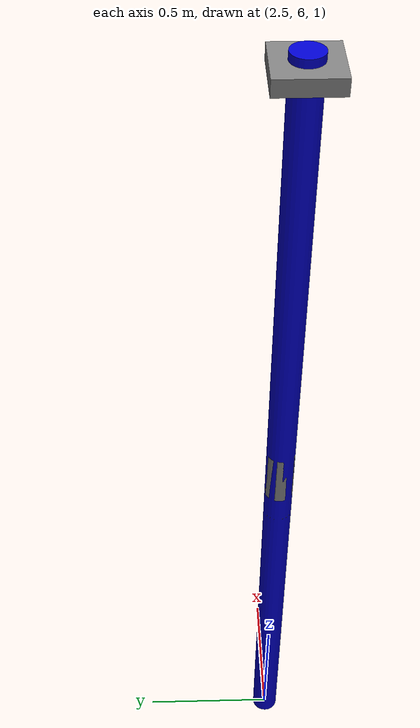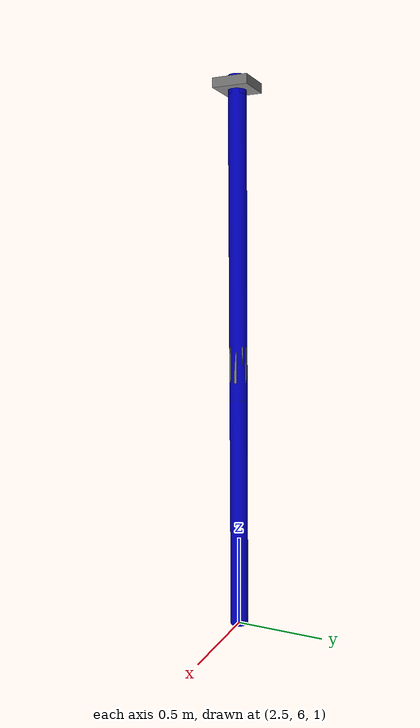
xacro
<?xml version="1.0" ?>

<robot name="giraffe_robot"  xmlns:xacro="http://www.ros.org/wiki/xacro">

    <!-- parameters -->
    <xacro:property name="ceiling_height" value="4.0"/>
    <xacro:property name="base_radius" value="0.1"/>
    <xacro:property name="base_length" value="0.1"/>
    <xacro:property name="link_radius" value="0.05"/>
    <xacro:property name="prismatic_length" value="3.0"/>  <!-- prismatic range -->
    <xacro:property name="wrist_length" value="0.2"/>

    <!-- materials -->
    <!-- grey for links, blue for joints -->
    <material name="Blue">
        <color rgba="0 0 0.8 1"/>
    </material>

    <material name="Grey">
        <color rgba="0.5 0.5 0.5 1"/>
    </material>

    <!-- world reference set at the center of the ceiling-->
    <link name="world"/>
    <joint name="world_base" type="fixed">
        <parent link="world"/>
        <child link="base_link"/>
        <origin xyz="2.5 6.0 ${ceiling_height}" rpy="0 0 0"/>
    </joint>

    <!-- base link (on the ceiling) -->
    <link name="base_link">
        <visual>
            <geometry>
                <box size="0.2 0.2 0.05"/>
            </geometry>
            <material name="Grey"/>
        </visual>
    </link>

    <!-- yaw link (z axis) and joint -->
    <link name="yaw_link">
        <visual>
            <geometry>
                <cylinder length="0.1" radius="${link_radius}"/>
            </geometry>
            <material name="Blue"/>
        </visual>
    </link>

    <joint name="yaw_joint" type="revolute">
        <parent link="base_link"/>
        <child link="yaw_link"/>
        <origin xyz="0 0 0" rpy="0 0 0"/>
        <axis xyz="0 0 1"/>
        <limit lower="-3.14" upper="3.14" effort="10" velocity="1"/>
    </joint>

    <!-- pitch link (y axis) and joint -->
    <link name="pitch_link">
        <visual>
            <geometry>
                <cylinder length="0.1" radius="${link_radius}"/>
            </geometry>
             <material name="Blue"/>
        </visual>
    </link>

    <joint name="pitch_joint" type="revolute">
        <parent link="yaw_link"/>
        <child link="pitch_link"/>
        <origin xyz="0 0 0" rpy="0 0 0"/>
        <axis xyz="0 1 0"/>
        <limit lower="-1.57" upper="1.57" effort="10" velocity="1"/>
    </joint>

    <!-- prismatic link and joint -->
    <link name="prismatic_link">
        <visual>
            <origin xyz="0 0 -${prismatic_length/2}" rpy="0 0 0"/>
            <geometry>
                <cylinder length="${prismatic_length}" radius="${link_radius}"/>
            </geometry>
            <material name="Blue"/>
        </visual>
    </link>

    <joint name="prismatic_joint" type="prismatic">
        <parent link="pitch_link"/>
        <child link="prismatic_link"/>
        <origin xyz="0 0 0" rpy="0 0 0"/>
        <axis xyz="0 0 -1"/>
        <limit lower="0.0" upper="${prismatic_length}" effort="100" velocity="0.5"/>
    </joint>

    <!-- wrist link and 2 joints -->
    <link name="wrist1_link">
        <visual>
            <geometry>
                <cylinder length="${wrist_length}" radius="${link_radius}"/>
            </geometry>
            <material name="Grey"/>
        </visual>
    </link>

    <joint name="wrist1" type="revolute">
        <parent link="prismatic_link"/>
        <child link="wrist1_link"/>
        <origin xyz="0 0 -${prismatic_length/2}" rpy="0 0 0"/>
        <axis xyz="0 1 0"/>
        <limit lower="-1.57" upper="1.57" effort="5" velocity="1"/>
    </joint>

    <joint name="wrist2" type="revolute">
        <parent link="wrist1_link"/>
        <child link="microphone"/>
        <origin xyz="0 0 -${wrist_length}" rpy="0 0 0"/>
        <axis xyz="1 0 0"/>
        <limit lower="-1.57" upper="1.57" effort="5" velocity="1"/>
    </joint>

    <!-- microphone orientation (end effector) -->
     <link name="microphone">
        <visual>
            <geometry>
                <sphere radius="0.05"/>
            </geometry>
            <material name="Grey"/>
        </visual>
    </link>

</robot>
